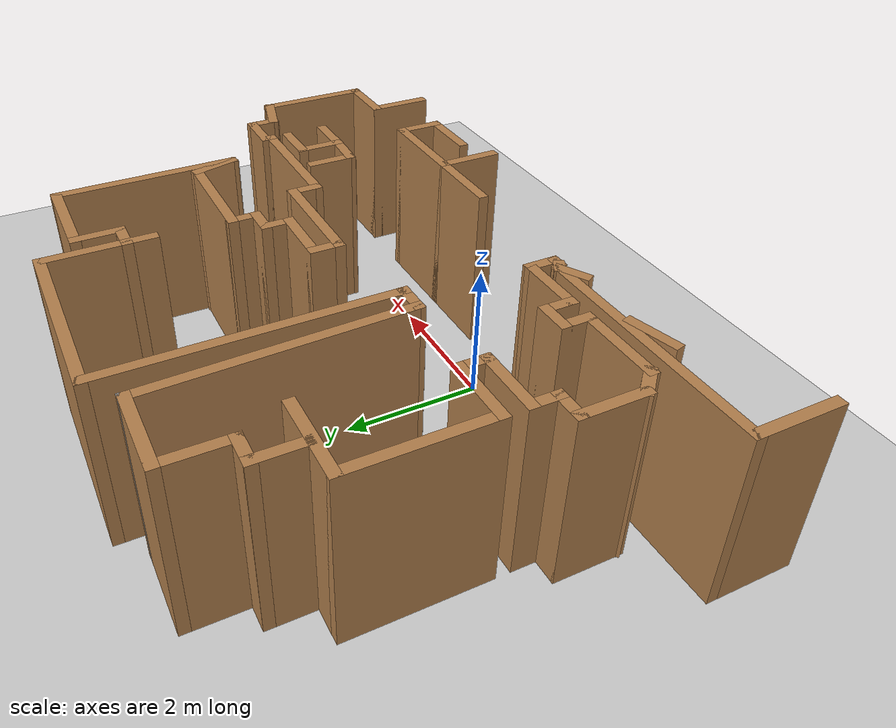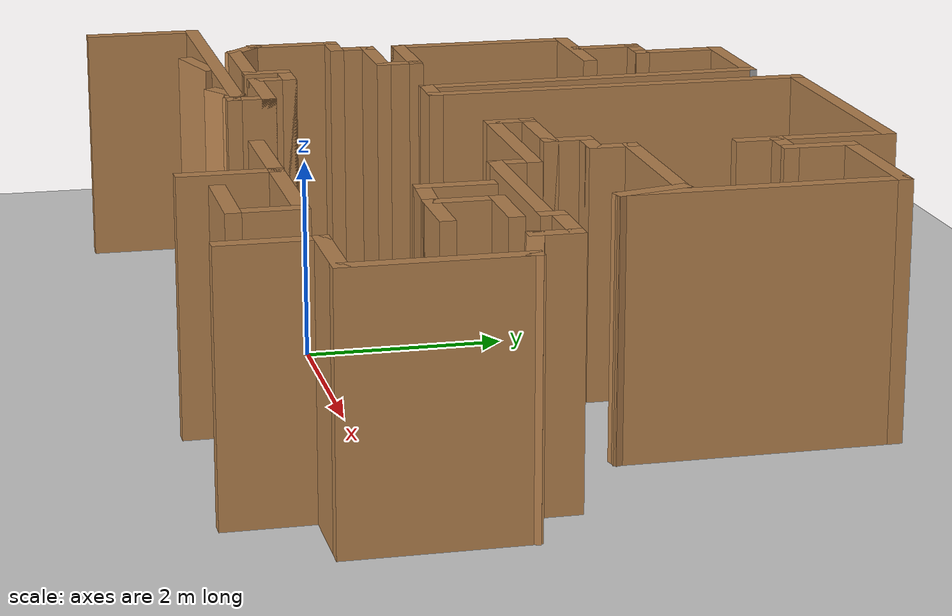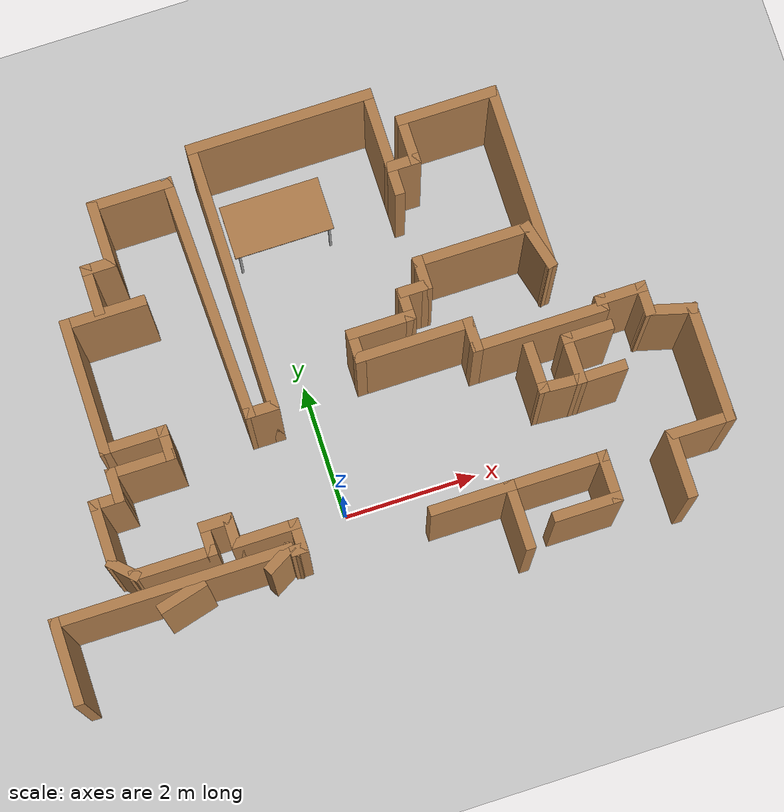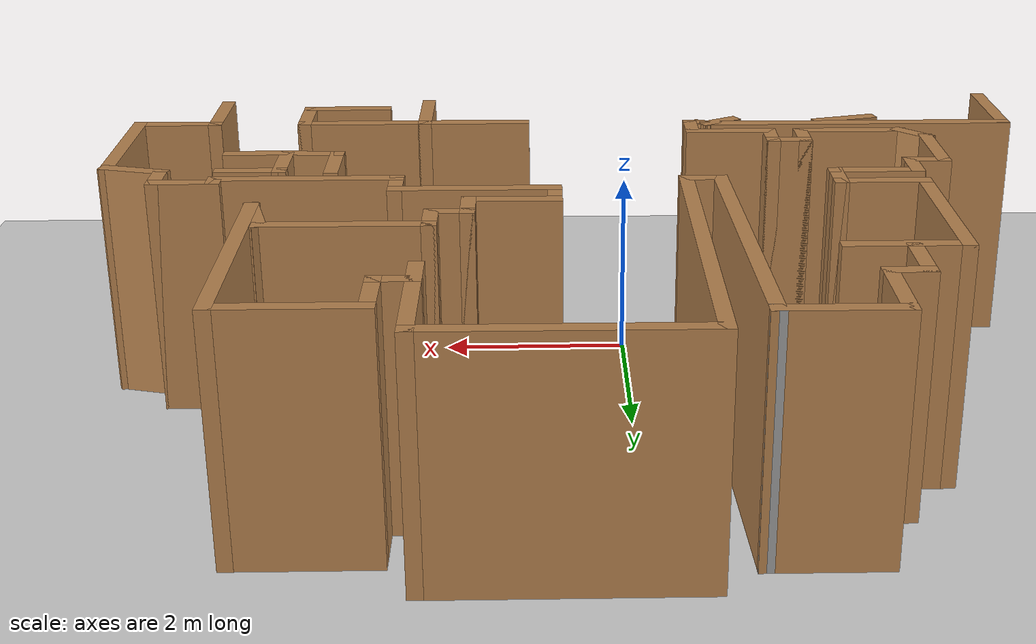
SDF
<sdf version="1.6">
 <world name="default">
  <model name="ground_plane">
   <static>1</static>
   <link name="link">
    <collision name="collision">
     <geometry><plane><normal>0 0 1</normal><size>100 100</size></plane></geometry>
     <surface>
      <contact><collide_bitmask>65535</collide_bitmask></contact>
      <friction><ode><mu>100</mu><mu2>50</mu2></ode></friction>
     </surface>
    </collision>
    <visual name="visual">
     <cast_shadows>0</cast_shadows>
     <geometry><plane><normal>0 0 1</normal><size>100 100</size></plane></geometry>
     <material>
      <script><uri>file://media/materials/scripts/gazebo.material</uri><name>Gazebo/Grey</name></script>
     </material>
    </visual>
   </link>
  </model>
  <model name="map_47">
   <pose>0.712 -1.49736 0 0 -0 0</pose>
   <link name="Wall_0">
    <collision name="Wall_0_Collision">
     <geometry><box><size>1.25 0.15 2.5</size></box></geometry>
     <pose>0 0 1.25 0 -0 0</pose>
    </collision>
    <visual name="Wall_0_Visual">
     <pose>0 0 1.25 0 -0 0</pose>
     <geometry><box><size>1.25 0.15 2.5</size></box></geometry>
     <material>
      <script><uri>file://media/materials/scripts/gazebo.material</uri><name>Gazebo/Wood</name></script>
      <ambient>1 1 1 1</ambient>
     </material>
     <meta><layer>0</layer></meta>
    </visual>
    <pose>-2.27237 6.42125 0 0 -0 3.14159</pose>
   </link>
   <link name="Wall_1">
    <collision name="Wall_1_Collision">
     <geometry><box><size>1 0.15 2.5</size></box></geometry>
     <pose>0 0 1.25 0 -0 0</pose>
    </collision>
    <visual name="Wall_1_Visual">
     <pose>0 0 1.25 0 -0 0</pose>
     <geometry><box><size>1 0.15 2.5</size></box></geometry>
     <material>
      <script><uri>file://media/materials/scripts/gazebo.material</uri><name>Gazebo/Wood</name></script>
      <ambient>1 1 1 1</ambient>
     </material>
     <meta><layer>0</layer></meta>
    </visual>
    <pose>-2.82237 5.99625 0 0 -0 -1.5708</pose>
   </link>
   <link name="Wall_10">
    <collision name="Wall_10_Collision">
     <geometry><box><size>1 0.15 2.5</size></box></geometry>
     <pose>0 0 1.25 0 -0 0</pose>
    </collision>
    <visual name="Wall_10_Visual">
     <pose>0 0 1.25 0 -0 0</pose>
     <geometry><box><size>1 0.15 2.5</size></box></geometry>
     <material>
      <script><uri>file://media/materials/scripts/gazebo.material</uri><name>Gazebo/Wood</name></script>
      <ambient>1 1 1 1</ambient>
     </material>
     <meta><layer>0</layer></meta>
    </visual>
    <pose>-3.24838 3.06273 0 0 -0 0</pose>
   </link>
   <link name="Wall_11">
    <collision name="Wall_11_Collision">
     <geometry><box><size>0.5 0.15 2.5</size></box></geometry>
     <pose>0 0 1.25 0 -0 0</pose>
    </collision>
    <visual name="Wall_11_Visual">
     <pose>0 0 1.25 0 -0 0</pose>
     <geometry><box><size>0.5 0.15 2.5</size></box></geometry>
     <material>
      <script><uri>file://media/materials/scripts/gazebo.material</uri><name>Gazebo/Wood</name></script>
      <ambient>1 1 1 1</ambient>
     </material>
     <meta><layer>0</layer></meta>
    </visual>
    <pose>-2.82339 2.88773 0 0 -0 -1.5708</pose>
   </link>
   <link name="Wall_110">
    <collision name="Wall_110_Collision">
     <geometry><box><size>1.25 0.15 2.5</size></box></geometry>
     <pose>0 0 1.25 0 -0 0</pose>
    </collision>
    <visual name="Wall_110_Visual">
     <pose>0 0 1.25 0 -0 0</pose>
     <geometry><box><size>1.25 0.15 2.5</size></box></geometry>
     <material>
      <script><uri>file://media/materials/scripts/gazebo.material</uri><name>Gazebo/Wood</name></script>
      <ambient>1 1 1 1</ambient>
     </material>
     <meta><layer>0</layer></meta>
    </visual>
    <pose>0.9625 0.862132 0 0 -0 0</pose>
   </link>
   <link name="Wall_111">
    <collision name="Wall_111_Collision">
     <geometry><box><size>1 0.15 2.5</size></box></geometry>
     <pose>0 0 1.25 0 -0 0</pose>
    </collision>
    <visual name="Wall_111_Visual">
     <pose>0 0 1.25 0 -0 0</pose>
     <geometry><box><size>1 0.15 2.5</size></box></geometry>
     <material>
      <script><uri>file://media/materials/scripts/gazebo.material</uri><name>Gazebo/Wood</name></script>
      <ambient>1 1 1 1</ambient>
     </material>
     <meta><layer>0</layer></meta>
    </visual>
    <pose>1.5125 0.437132 0 0 -0 -1.5708</pose>
   </link>
   <link name="Wall_113">
    <collision name="Wall_113_Collision">
     <geometry><box><size>1 0.15 2.5</size></box></geometry>
     <pose>0 0 1.25 0 -0 0</pose>
    </collision>
    <visual name="Wall_113_Visual">
     <pose>0 0 1.25 0 -0 0</pose>
     <geometry><box><size>1 0.15 2.5</size></box></geometry>
     <material>
      <script><uri>file://media/materials/scripts/gazebo.material</uri><name>Gazebo/Wood</name></script>
      <ambient>1 1 1 1</ambient>
     </material>
     <meta><layer>0</layer></meta>
    </visual>
    <pose>3.8625 0.437132 0 0 -0 1.5708</pose>
   </link>
   <link name="Wall_114">
    <collision name="Wall_114_Collision">
     <geometry><box><size>1 0.15 2.5</size></box></geometry>
     <pose>0 0 1.25 0 -0 0</pose>
    </collision>
    <visual name="Wall_114_Visual">
     <pose>0 0 1.25 0 -0 0</pose>
     <geometry><box><size>1 0.15 2.5</size></box></geometry>
     <material>
      <script><uri>file://media/materials/scripts/gazebo.material</uri><name>Gazebo/Wood</name></script>
      <ambient>1 1 1 1</ambient>
     </material>
     <meta><layer>0</layer></meta>
    </visual>
    <pose>4.2875 0.862132 0 0 -0 0</pose>
   </link>
   <link name="Wall_115">
    <collision name="Wall_115_Collision">
     <geometry><box><size>1.75 0.15 2.5</size></box></geometry>
     <pose>0 0 1.25 0 -0 0</pose>
    </collision>
    <visual name="Wall_115_Visual">
     <pose>0 0 1.25 0 -0 0</pose>
     <geometry><box><size>1.75 0.15 2.5</size></box></geometry>
     <material>
      <script><uri>file://media/materials/scripts/gazebo.material</uri><name>Gazebo/Wood</name></script>
      <ambient>1 1 1 1</ambient>
     </material>
     <meta><layer>0</layer></meta>
    </visual>
    <pose>4.7125 1.66213 0 0 -0 1.5708</pose>
   </link>
   <link name="Wall_116">
    <collision name="Wall_116_Collision">
     <geometry><box><size>0.75 0.15 2.5</size></box></geometry>
     <pose>0 0 1.25 0 -0 0</pose>
    </collision>
    <visual name="Wall_116_Visual">
     <pose>0 0 1.25 0 -0 0</pose>
     <geometry><box><size>0.75 0.15 2.5</size></box></geometry>
     <material>
      <script><uri>file://media/materials/scripts/gazebo.material</uri><name>Gazebo/Wood</name></script>
      <ambient>1 1 1 1</ambient>
     </material>
     <meta><layer>0</layer></meta>
    </visual>
    <pose>4.42272 2.53978 0 0 -0 2.87979</pose>
   </link>
   <link name="Wall_117">
    <collision name="Wall_117_Collision">
     <geometry><box><size>0.5 0.15 2.5</size></box></geometry>
     <pose>0 0 1.25 0 -0 0</pose>
    </collision>
    <visual name="Wall_117_Visual">
     <pose>0 0 1.25 0 -0 0</pose>
     <geometry><box><size>0.5 0.15 2.5</size></box></geometry>
     <material>
      <script><uri>file://media/materials/scripts/gazebo.material</uri><name>Gazebo/Wood</name></script>
      <ambient>1 1 1 1</ambient>
     </material>
     <meta><layer>0</layer></meta>
    </visual>
    <pose>4.13295 2.79242 0 0 -0 1.5708</pose>
   </link>
   <link name="Wall_118">
    <collision name="Wall_118_Collision">
     <geometry><box><size>0.75 0.15 2.5</size></box></geometry>
     <pose>0 0 1.25 0 -0 0</pose>
    </collision>
    <visual name="Wall_118_Visual">
     <pose>0 0 1.25 0 -0 0</pose>
     <geometry><box><size>0.75 0.15 2.5</size></box></geometry>
     <material>
      <script><uri>file://media/materials/scripts/gazebo.material</uri><name>Gazebo/Wood</name></script>
      <ambient>1 1 1 1</ambient>
     </material>
     <meta><layer>0</layer></meta>
    </visual>
    <pose>3.83294 2.96742 0 0 -0 3.14159</pose>
   </link>
   <link name="Wall_119">
    <collision name="Wall_119_Collision">
     <geometry><box><size>0.25 0.15 2.5</size></box></geometry>
     <pose>0 0 1.25 0 -0 0</pose>
    </collision>
    <visual name="Wall_119_Visual">
     <pose>0 0 1.25 0 -0 0</pose>
     <geometry><box><size>0.25 0.15 2.5</size></box></geometry>
     <material>
      <script><uri>file://media/materials/scripts/gazebo.material</uri><name>Gazebo/Wood</name></script>
      <ambient>1 1 1 1</ambient>
     </material>
     <meta><layer>0</layer></meta>
    </visual>
    <pose>3.53294 2.91742 0 0 -0 -1.5708</pose>
   </link>
   <link name="Wall_12">
    <collision name="Wall_12_Collision">
     <geometry><box><size>1 0.15 2.5</size></box></geometry>
     <pose>0 0 1.25 0 -0 0</pose>
    </collision>
    <visual name="Wall_12_Visual">
     <pose>0 0 1.25 0 -0 0</pose>
     <geometry><box><size>1 0.15 2.5</size></box></geometry>
     <material>
      <script><uri>file://media/materials/scripts/gazebo.material</uri><name>Gazebo/Wood</name></script>
      <ambient>1 1 1 1</ambient>
     </material>
     <meta><layer>0</layer></meta>
    </visual>
    <pose>-3.24838 2.71273 0 0 -0 3.14159</pose>
   </link>
   <link name="Wall_120">
    <collision name="Wall_120_Collision">
     <geometry><box><size>2 0.15 2.5</size></box></geometry>
     <pose>0 0 1.25 0 -0 0</pose>
    </collision>
    <visual name="Wall_120_Visual">
     <pose>0 0 1.25 0 -0 0</pose>
     <geometry><box><size>2 0.15 2.5</size></box></geometry>
     <material>
      <script><uri>file://media/materials/scripts/gazebo.material</uri><name>Gazebo/Wood</name></script>
      <ambient>1 1 1 1</ambient>
     </material>
     <meta><layer>0</layer></meta>
    </visual>
    <pose>2.60794 2.86742 0 0 -0 3.14159</pose>
   </link>
   <link name="Wall_121">
    <collision name="Wall_121_Collision">
     <geometry><box><size>0.5 0.15 2.5</size></box></geometry>
     <pose>0 0 1.25 0 -0 0</pose>
    </collision>
    <visual name="Wall_121_Visual">
     <pose>0 0 1.25 0 -0 0</pose>
     <geometry><box><size>0.5 0.15 2.5</size></box></geometry>
     <material>
      <script><uri>file://media/materials/scripts/gazebo.material</uri><name>Gazebo/Wood</name></script>
      <ambient>1 1 1 1</ambient>
     </material>
     <meta><layer>0</layer></meta>
    </visual>
    <pose>1.68294 3.04242 0 0 -0 1.5708</pose>
   </link>
   <link name="Wall_122">
    <collision name="Wall_122_Collision">
     <geometry><box><size>1.75 0.15 2.5</size></box></geometry>
     <pose>0 0 1.25 0 -0 0</pose>
    </collision>
    <visual name="Wall_122_Visual">
     <pose>0 0 1.25 0 -0 0</pose>
     <geometry><box><size>1.75 0.15 2.5</size></box></geometry>
     <material>
      <script><uri>file://media/materials/scripts/gazebo.material</uri><name>Gazebo/Wood</name></script>
      <ambient>1 1 1 1</ambient>
     </material>
     <meta><layer>0</layer></meta>
    </visual>
    <pose>0.882944 3.21742 0 0 -0 3.14159</pose>
   </link>
   <link name="Wall_123">
    <collision name="Wall_123_Collision">
     <geometry><box><size>0.5 0.15 2.5</size></box></geometry>
     <pose>0 0 1.25 0 -0 0</pose>
    </collision>
    <visual name="Wall_123_Visual">
     <pose>0 0 1.25 0 -0 0</pose>
     <geometry><box><size>0.5 0.15 2.5</size></box></geometry>
     <material>
      <script><uri>file://media/materials/scripts/gazebo.material</uri><name>Gazebo/Wood</name></script>
      <ambient>1 1 1 1</ambient>
     </material>
     <meta><layer>0</layer></meta>
    </visual>
    <pose>0.082945 3.39242 0 0 -0 1.5708</pose>
   </link>
   <link name="Wall_126">
    <collision name="Wall_126_Collision">
     <geometry><box><size>1 0.15 2.5</size></box></geometry>
     <pose>0 0 1.25 0 -0 0</pose>
    </collision>
    <visual name="Wall_126_Visual">
     <pose>0 0 1.25 0 -0 0</pose>
     <geometry><box><size>1 0.15 2.5</size></box></geometry>
     <material>
      <script><uri>file://media/materials/scripts/gazebo.material</uri><name>Gazebo/Wood</name></script>
      <ambient>1 1 1 1</ambient>
     </material>
     <meta><layer>0</layer></meta>
    </visual>
    <pose>0.507945 3.56742 0 0 -0 0</pose>
   </link>
   <link name="Wall_127">
    <collision name="Wall_127_Collision">
     <geometry><box><size>0.5 0.15 2.5</size></box></geometry>
     <pose>0 0 1.25 0 -0 0</pose>
    </collision>
    <visual name="Wall_127_Visual">
     <pose>0 0 1.25 0 -0 0</pose>
     <geometry><box><size>0.5 0.15 2.5</size></box></geometry>
     <material>
      <script><uri>file://media/materials/scripts/gazebo.material</uri><name>Gazebo/Wood</name></script>
      <ambient>1 1 1 1</ambient>
     </material>
     <meta><layer>0</layer></meta>
    </visual>
    <pose>0.932945 3.74242 0 0 -0 1.5708</pose>
   </link>
   <link name="Wall_128">
    <collision name="Wall_128_Collision">
     <geometry><box><size>0.5 0.15 2.5</size></box></geometry>
     <pose>0 0 1.25 0 -0 0</pose>
    </collision>
    <visual name="Wall_128_Visual">
     <pose>0 0 1.25 0 -0 0</pose>
     <geometry><box><size>0.5 0.15 2.5</size></box></geometry>
     <material>
      <script><uri>file://media/materials/scripts/gazebo.material</uri><name>Gazebo/Wood</name></script>
      <ambient>1 1 1 1</ambient>
     </material>
     <meta><layer>0</layer></meta>
    </visual>
    <pose>1.10794 3.91742 0 0 -0 0</pose>
   </link>
   <link name="Wall_129">
    <collision name="Wall_129_Collision">
     <geometry><box><size>0.5 0.15 2.5</size></box></geometry>
     <pose>0 0 1.25 0 -0 0</pose>
    </collision>
    <visual name="Wall_129_Visual">
     <pose>0 0 1.25 0 -0 0</pose>
     <geometry><box><size>0.5 0.15 2.5</size></box></geometry>
     <material>
      <script><uri>file://media/materials/scripts/gazebo.material</uri><name>Gazebo/Wood</name></script>
      <ambient>1 1 1 1</ambient>
     </material>
     <meta><layer>0</layer></meta>
    </visual>
    <pose>1.28295 4.09242 0 0 -0 1.5708</pose>
   </link>
   <link name="Wall_13">
    <collision name="Wall_13_Collision">
     <geometry><box><size>0.5 0.15 2.5</size></box></geometry>
     <pose>0 0 1.25 0 -0 0</pose>
    </collision>
    <visual name="Wall_13_Visual">
     <pose>0 0 1.25 0 -0 0</pose>
     <geometry><box><size>0.5 0.15 2.5</size></box></geometry>
     <material>
      <script><uri>file://media/materials/scripts/gazebo.material</uri><name>Gazebo/Wood</name></script>
      <ambient>1 1 1 1</ambient>
     </material>
     <meta><layer>0</layer></meta>
    </visual>
    <pose>-3.67339 2.53773 0 0 -0 -1.5708</pose>
   </link>
   <link name="Wall_130">
    <collision name="Wall_130_Collision">
     <geometry><box><size>1.75 0.15 2.5</size></box></geometry>
     <pose>0 0 1.25 0 -0 0</pose>
    </collision>
    <visual name="Wall_130_Visual">
     <pose>0 0 1.25 0 -0 0</pose>
     <geometry><box><size>1.75 0.15 2.5</size></box></geometry>
     <material>
      <script><uri>file://media/materials/scripts/gazebo.material</uri><name>Gazebo/Wood</name></script>
      <ambient>1 1 1 1</ambient>
     </material>
     <meta><layer>0</layer></meta>
    </visual>
    <pose>2.08294 4.26742 0 0 -0 0</pose>
   </link>
   <link name="Wall_131">
    <collision name="Wall_131_Collision">
     <geometry><box><size>0.75 0.15 2.5</size></box></geometry>
     <pose>0 0 1.25 0 -0 0</pose>
    </collision>
    <visual name="Wall_131_Visual">
     <pose>0 0 1.25 0 -0 0</pose>
     <geometry><box><size>0.75 0.15 2.5</size></box></geometry>
     <material>
      <script><uri>file://media/materials/scripts/gazebo.material</uri><name>Gazebo/Wood</name></script>
      <ambient>1 1 1 1</ambient>
     </material>
     <meta><layer>0</layer></meta>
    </visual>
    <pose>2.96059 3.97765 0 0 -0 -1.309</pose>
   </link>
   <link name="Wall_132">
    <collision name="Wall_132_Collision">
     <geometry><box><size>2.75 0.15 2.5</size></box></geometry>
     <pose>0 0 1.25 0 -0 0</pose>
    </collision>
    <visual name="Wall_132_Visual">
     <pose>0 0 1.25 0 -0 0</pose>
     <geometry><box><size>2.75 0.15 2.5</size></box></geometry>
     <material>
      <script><uri>file://media/materials/scripts/gazebo.material</uri><name>Gazebo/Wood</name></script>
      <ambient>1 1 1 1</ambient>
     </material>
     <meta><layer>0</layer></meta>
    </visual>
    <pose>3.03824 4.98787 0 0 -0 1.5708</pose>
   </link>
   <link name="Wall_133">
    <collision name="Wall_133_Collision">
     <geometry><box><size>1.5 0.15 2.5</size></box></geometry>
     <pose>0 0 1.25 0 -0 0</pose>
    </collision>
    <visual name="Wall_133_Visual">
     <pose>0 0 1.25 0 -0 0</pose>
     <geometry><box><size>1.5 0.15 2.5</size></box></geometry>
     <material>
      <script><uri>file://media/materials/scripts/gazebo.material</uri><name>Gazebo/Wood</name></script>
      <ambient>1 1 1 1</ambient>
     </material>
     <meta><layer>0</layer></meta>
    </visual>
    <pose>2.36324 6.28787 0 0 -0 3.14159</pose>
   </link>
   <link name="Wall_134">
    <collision name="Wall_134_Collision">
     <geometry><box><size>0.75 0.15 2.5</size></box></geometry>
     <pose>0 0 1.25 0 -0 0</pose>
    </collision>
    <visual name="Wall_134_Visual">
     <pose>0 0 1.25 0 -0 0</pose>
     <geometry><box><size>0.75 0.15 2.5</size></box></geometry>
     <material>
      <script><uri>file://media/materials/scripts/gazebo.material</uri><name>Gazebo/Wood</name></script>
      <ambient>1 1 1 1</ambient>
     </material>
     <meta><layer>0</layer></meta>
    </visual>
    <pose>1.68824 5.98787 0 0 -0 -1.5708</pose>
   </link>
   <link name="Wall_135">
    <collision name="Wall_135_Collision">
     <geometry><box><size>0.5 0.15 2.5</size></box></geometry>
     <pose>0 0 1.25 0 -0 0</pose>
    </collision>
    <visual name="Wall_135_Visual">
     <pose>0 0 1.25 0 -0 0</pose>
     <geometry><box><size>0.5 0.15 2.5</size></box></geometry>
     <material>
      <script><uri>file://media/materials/scripts/gazebo.material</uri><name>Gazebo/Wood</name></script>
      <ambient>1 1 1 1</ambient>
     </material>
     <meta><layer>0</layer></meta>
    </visual>
    <pose>1.51324 5.68787 0 0 -0 3.14159</pose>
   </link>
   <link name="Wall_136">
    <collision name="Wall_136_Collision">
     <geometry><box><size>1.25 0.15 2.5</size></box></geometry>
     <pose>0 0 1.25 0 -0 0</pose>
    </collision>
    <visual name="Wall_136_Visual">
     <pose>0 0 1.25 0 -0 0</pose>
     <geometry><box><size>1.25 0.15 2.5</size></box></geometry>
     <material>
      <script><uri>file://media/materials/scripts/gazebo.material</uri><name>Gazebo/Wood</name></script>
      <ambient>1 1 1 1</ambient>
     </material>
     <meta><layer>0</layer></meta>
    </visual>
    <pose>1.33824 6.23787 0 0 -0 1.5708</pose>
   </link>
   <link name="Wall_137">
    <collision name="Wall_137_Collision">
     <geometry><box><size>2.75 0.15 2.5</size></box></geometry>
     <pose>0 0 1.25 0 -0 0</pose>
    </collision>
    <visual name="Wall_137_Visual">
     <pose>0 0 1.25 0 -0 0</pose>
     <geometry><box><size>2.75 0.15 2.5</size></box></geometry>
     <material>
      <script><uri>file://media/materials/scripts/gazebo.material</uri><name>Gazebo/Wood</name></script>
      <ambient>1 1 1 1</ambient>
     </material>
     <meta><layer>0</layer></meta>
    </visual>
    <pose>0.038236 6.78787 0 0 -0 3.14159</pose>
   </link>
   <link name="Wall_138">
    <collision name="Wall_138_Collision">
     <geometry><box><size>4 0.15 2.5</size></box></geometry>
     <pose>0 0 1.25 0 -0 0</pose>
    </collision>
    <visual name="Wall_138_Visual">
     <pose>0 0 1.25 0 -0 0</pose>
     <geometry><box><size>4 0.15 2.5</size></box></geometry>
     <material>
      <script><uri>file://media/materials/scripts/gazebo.material</uri><name>Gazebo/Wood</name></script>
      <ambient>1 1 1 1</ambient>
     </material>
     <meta><layer>0</layer></meta>
    </visual>
    <pose>-1.26176 4.86287 0 0 -0 -1.5708</pose>
   </link>
   <link name="Wall_139">
    <collision name="Wall_139_Collision">
     <geometry><box><size>0.5 0.15 2.5</size></box></geometry>
     <pose>0 0 1.25 0 -0 0</pose>
    </collision>
    <visual name="Wall_139_Visual">
     <pose>0 0 1.25 0 -0 0</pose>
     <geometry><box><size>0.5 0.15 2.5</size></box></geometry>
     <material>
      <script><uri>file://media/materials/scripts/gazebo.material</uri><name>Gazebo/Wood</name></script>
      <ambient>1 1 1 1</ambient>
     </material>
     <meta><layer>0</layer></meta>
    </visual>
    <pose>-1.43676 2.93787 0 0 -0 3.14159</pose>
   </link>
   <link name="Wall_141">
    <collision name="Wall_141_Collision">
     <geometry><box><size>0.15 0.15 2.5</size></box></geometry>
     <pose>0 0 1.25 0 -0 0</pose>
    </collision>
    <visual name="Wall_141_Visual">
     <pose>0 0 1.25 0 -0 0</pose>
     <geometry><box><size>0.15 0.15 2.5</size></box></geometry>
     <material>
      <script><uri>file://media/materials/scripts/gazebo.material</uri><name>Gazebo/Grey</name></script>
      <ambient>1 1 1 1</ambient>
     </material>
     <meta><layer>0</layer></meta>
    </visual>
    <pose>-1.72237 6.42125 0 0 -0 0</pose>
   </link>
   <link name="Wall_144">
    <collision name="Wall_144_Collision">
     <geometry><box><size>3.63513 0.15 2.5</size></box></geometry>
     <pose>0 0 1.25 0 -0 0</pose>
    </collision>
    <visual name="Wall_144_Visual">
     <pose>0 0 1.25 0 -0 0</pose>
     <geometry><box><size>3.63513 0.15 2.5</size></box></geometry>
     <material>
      <script><uri>file://media/materials/scripts/gazebo.material</uri><name>Gazebo/Wood</name></script>
      <ambient>1 1 1 1</ambient>
     </material>
     <meta><layer>0</layer></meta>
    </visual>
    <pose>-1.66707 4.67956 0 0 -0 1.60254</pose>
   </link>
   <link name="Wall_146">
    <collision name="Wall_146_Collision">
     <geometry><box><size>0.5 0.15 2.5</size></box></geometry>
     <pose>0 0 1.25 0 -0 0</pose>
    </collision>
    <visual name="Wall_146_Visual">
     <pose>0 0 1.25 0 -0 0</pose>
     <geometry><box><size>0.5 0.15 2.5</size></box></geometry>
     <material>
      <script><uri>file://media/materials/scripts/gazebo.material</uri><name>Gazebo/Wood</name></script>
      <ambient>1 1 1 1</ambient>
     </material>
     <meta><layer>0</layer></meta>
    </visual>
    <pose>1.33824 5.51287 0 0 -0 -1.5708</pose>
   </link>
   <link name="Wall_148">
    <collision name="Wall_148_Collision">
     <geometry><box><size>0.75 0.15 2.5</size></box></geometry>
     <pose>0 0 1.25 0 -0 0</pose>
    </collision>
    <visual name="Wall_148_Visual">
     <pose>0 0 1.25 0 -0 0</pose>
     <geometry><box><size>0.75 0.15 2.5</size></box></geometry>
     <material>
      <script><uri>file://media/materials/scripts/gazebo.material</uri><name>Gazebo/Wood</name></script>
      <ambient>1 1 1 1</ambient>
     </material>
     <meta><layer>0</layer></meta>
    </visual>
    <pose>3.21399 2.5924 0 0 -0 3.14159</pose>
   </link>
   <link name="Wall_149">
    <collision name="Wall_149_Collision">
     <geometry><box><size>0.75 0.15 2.5</size></box></geometry>
     <pose>0 0 1.25 0 -0 0</pose>
    </collision>
    <visual name="Wall_149_Visual">
     <pose>0 0 1.25 0 -0 0</pose>
     <geometry><box><size>0.75 0.15 2.5</size></box></geometry>
     <material>
      <script><uri>file://media/materials/scripts/gazebo.material</uri><name>Gazebo/Wood</name></script>
      <ambient>1 1 1 1</ambient>
     </material>
     <meta><layer>0</layer></meta>
    </visual>
    <pose>2.91399 2.2924 0 0 -0 -1.5708</pose>
   </link>
   <link name="Wall_150">
    <collision name="Wall_150_Collision">
     <geometry><box><size>0.75 0.15 2.5</size></box></geometry>
     <pose>0 0 1.25 0 -0 0</pose>
    </collision>
    <visual name="Wall_150_Visual">
     <pose>0 0 1.25 0 -0 0</pose>
     <geometry><box><size>0.75 0.15 2.5</size></box></geometry>
     <material>
      <script><uri>file://media/materials/scripts/gazebo.material</uri><name>Gazebo/Wood</name></script>
      <ambient>1 1 1 1</ambient>
     </material>
     <meta><layer>0</layer></meta>
    </visual>
    <pose>3.21399 1.9924 0 0 -0 0</pose>
   </link>
   <link name="Wall_152">
    <collision name="Wall_152_Collision">
     <geometry><box><size>0.75 0.15 2.5</size></box></geometry>
     <pose>0 0 1.25 0 -0 0</pose>
    </collision>
    <visual name="Wall_152_Visual">
     <pose>0 0 1.25 0 -0 0</pose>
     <geometry><box><size>0.75 0.15 2.5</size></box></geometry>
     <material>
      <script><uri>file://media/materials/scripts/gazebo.material</uri><name>Gazebo/Wood</name></script>
      <ambient>1 1 1 1</ambient>
     </material>
     <meta><layer>0</layer></meta>
    </visual>
    <pose>2.37714 2.32738 0 0 -0 -1.5708</pose>
   </link>
   <link name="Wall_153">
    <collision name="Wall_153_Collision">
     <geometry><box><size>0.687992 0.15 2.5</size></box></geometry>
     <pose>0 0 1.25 0 -0 0</pose>
    </collision>
    <visual name="Wall_153_Visual">
     <pose>0 0 1.25 0 -0 0</pose>
     <geometry><box><size>0.687992 0.15 2.5</size></box></geometry>
     <material>
      <script><uri>file://media/materials/scripts/gazebo.material</uri><name>Gazebo/Wood</name></script>
      <ambient>1 1 1 1</ambient>
     </material>
     <meta><layer>0</layer></meta>
    </visual>
    <pose>2.64557 2.00989 0 0 -0 -0.065066</pose>
   </link>
   <link name="Wall_156">
    <collision name="Wall_156_Collision">
     <geometry><box><size>1.5 0.15 2.5</size></box></geometry>
     <pose>0 0 1.25 0 -0 0</pose>
    </collision>
    <visual name="Wall_156_Visual">
     <pose>0 0 1.25 0 -0 0</pose>
     <geometry><box><size>1.5 0.15 2.5</size></box></geometry>
     <material>
      <script><uri>file://media/materials/scripts/gazebo.material</uri><name>Gazebo/Wood</name></script>
      <ambient>1 1 1 1</ambient>
     </material>
     <meta><layer>0</layer></meta>
    </visual>
    <pose>2.1875 0.862132 0 0 -0 0</pose>
   </link>
   <link name="Wall_157">
    <collision name="Wall_157_Collision">
     <geometry><box><size>0.75 0.15 2.5</size></box></geometry>
     <pose>0 0 1.25 0 -0 0</pose>
    </collision>
    <visual name="Wall_157_Visual">
     <pose>0 0 1.25 0 -0 0</pose>
     <geometry><box><size>0.75 0.15 2.5</size></box></geometry>
     <material>
      <script><uri>file://media/materials/scripts/gazebo.material</uri><name>Gazebo/Wood</name></script>
      <ambient>1 1 1 1</ambient>
     </material>
     <meta><layer>0</layer></meta>
    </visual>
    <pose>2.8625 0.562132 0 0 -0 -1.5708</pose>
   </link>
   <link name="Wall_158">
    <collision name="Wall_158_Collision">
     <geometry><box><size>1 0.15 2.5</size></box></geometry>
     <pose>0 0 1.25 0 -0 0</pose>
    </collision>
    <visual name="Wall_158_Visual">
     <pose>0 0 1.25 0 -0 0</pose>
     <geometry><box><size>1 0.15 2.5</size></box></geometry>
     <material>
      <script><uri>file://media/materials/scripts/gazebo.material</uri><name>Gazebo/Wood</name></script>
      <ambient>1 1 1 1</ambient>
     </material>
     <meta><layer>0</layer></meta>
    </visual>
    <pose>2.4375 0.262132 0 0 -0 3.14159</pose>
   </link>
   <link name="Wall_16">
    <collision name="Wall_16_Collision">
     <geometry><box><size>0.5 0.15 2.5</size></box></geometry>
     <pose>0 0 1.25 0 -0 0</pose>
    </collision>
    <visual name="Wall_16_Visual">
     <pose>0 0 1.25 0 -0 0</pose>
     <geometry><box><size>0.5 0.15 2.5</size></box></geometry>
     <material>
      <script><uri>file://media/materials/scripts/gazebo.material</uri><name>Gazebo/Wood</name></script>
      <ambient>1 1 1 1</ambient>
     </material>
     <meta><layer>0</layer></meta>
    </visual>
    <pose>-3.84838 2.36273 0 0 -0 3.14159</pose>
   </link>
   <link name="Wall_164">
    <collision name="Wall_164_Collision">
     <geometry><box><size>0.5 0.15 2.5</size></box></geometry>
     <pose>0 0 1.25 0 -0 0</pose>
    </collision>
    <visual name="Wall_164_Visual">
     <pose>0 0 1.25 0 -0 0</pose>
     <geometry><box><size>0.5 0.15 2.5</size></box></geometry>
     <material>
      <script><uri>file://media/materials/scripts/gazebo.material</uri><name>Gazebo/Wood</name></script>
      <ambient>1 1 1 1</ambient>
     </material>
     <meta><layer>0</layer></meta>
    </visual>
    <pose>-1.81405 0.877741 0 0 -0 -2.61799</pose>
   </link>
   <link name="Wall_166">
    <collision name="Wall_166_Collision">
     <geometry><box><size>0.75 0.15 2.5</size></box></geometry>
     <pose>0 0 1.25 0 -0 0</pose>
    </collision>
    <visual name="Wall_166_Visual">
     <pose>0 0 1.25 0 -0 0</pose>
     <geometry><box><size>0.75 0.15 2.5</size></box></geometry>
     <material>
      <script><uri>file://media/materials/scripts/gazebo.material</uri><name>Gazebo/Wood</name></script>
      <ambient>1 1 1 1</ambient>
     </material>
     <meta><layer>0</layer></meta>
    </visual>
    <pose>-3.24472 0.798606 0 0 -0 0.261799</pose>
   </link>
   <link name="Wall_17">
    <collision name="Wall_17_Collision">
     <geometry><box><size>1 0.15 2.5</size></box></geometry>
     <pose>0 0 1.25 0 -0 0</pose>
    </collision>
    <visual name="Wall_17_Visual">
     <pose>0 0 1.25 0 -0 0</pose>
     <geometry><box><size>1 0.15 2.5</size></box></geometry>
     <material>
      <script><uri>file://media/materials/scripts/gazebo.material</uri><name>Gazebo/Wood</name></script>
      <ambient>1 1 1 1</ambient>
     </material>
     <meta><layer>0</layer></meta>
    </visual>
    <pose>-4.02339 1.93773 0 0 -0 -1.5708</pose>
   </link>
   <link name="Wall_18">
    <collision name="Wall_18_Collision">
     <geometry><box><size>0.5 0.15 2.5</size></box></geometry>
     <pose>0 0 1.25 0 -0 0</pose>
    </collision>
    <visual name="Wall_18_Visual">
     <pose>0 0 1.25 0 -0 0</pose>
     <geometry><box><size>0.5 0.15 2.5</size></box></geometry>
     <material>
      <script><uri>file://media/materials/scripts/gazebo.material</uri><name>Gazebo/Wood</name></script>
      <ambient>1 1 1 1</ambient>
     </material>
     <meta><layer>0</layer></meta>
    </visual>
    <pose>-3.89964 1.38898 0 0 -0 -0.785398</pose>
   </link>
   <link name="Wall_19">
    <collision name="Wall_19_Collision">
     <geometry><box><size>1.25 0.15 2.5</size></box></geometry>
     <pose>0 0 1.25 0 -0 0</pose>
    </collision>
    <visual name="Wall_19_Visual">
     <pose>0 0 1.25 0 -0 0</pose>
     <geometry><box><size>1.25 0.15 2.5</size></box></geometry>
     <material>
      <script><uri>file://media/materials/scripts/gazebo.material</uri><name>Gazebo/Wood</name></script>
      <ambient>1 1 1 1</ambient>
     </material>
     <meta><layer>0</layer></meta>
    </visual>
    <pose>-3.2259 1.26524 0 0 -0 0</pose>
   </link>
   <link name="Wall_2">
    <collision name="Wall_2_Collision">
     <geometry><box><size>0.5 0.15 2.5</size></box></geometry>
     <pose>0 0 1.25 0 -0 0</pose>
    </collision>
    <visual name="Wall_2_Visual">
     <pose>0 0 1.25 0 -0 0</pose>
     <geometry><box><size>0.5 0.15 2.5</size></box></geometry>
     <material>
      <script><uri>file://media/materials/scripts/gazebo.material</uri><name>Gazebo/Wood</name></script>
      <ambient>1 1 1 1</ambient>
     </material>
     <meta><layer>0</layer></meta>
    </visual>
    <pose>-2.99737 5.57125 0 0 -0 3.14159</pose>
   </link>
   <link name="Wall_20">
    <collision name="Wall_20_Collision">
     <geometry><box><size>0.5 0.15 2.5</size></box></geometry>
     <pose>0 0 1.25 0 -0 0</pose>
    </collision>
    <visual name="Wall_20_Visual">
     <pose>0 0 1.25 0 -0 0</pose>
     <geometry><box><size>0.5 0.15 2.5</size></box></geometry>
     <material>
      <script><uri>file://media/materials/scripts/gazebo.material</uri><name>Gazebo/Wood</name></script>
      <ambient>1 1 1 1</ambient>
     </material>
     <meta><layer>0</layer></meta>
    </visual>
    <pose>-2.6759 1.44024 0 0 -0 1.5708</pose>
   </link>
   <link name="Wall_21">
    <collision name="Wall_21_Collision">
     <geometry><box><size>0.5 0.15 2.5</size></box></geometry>
     <pose>0 0 1.25 0 -0 0</pose>
    </collision>
    <visual name="Wall_21_Visual">
     <pose>0 0 1.25 0 -0 0</pose>
     <geometry><box><size>0.5 0.15 2.5</size></box></geometry>
     <material>
      <script><uri>file://media/materials/scripts/gazebo.material</uri><name>Gazebo/Wood</name></script>
      <ambient>1 1 1 1</ambient>
     </material>
     <meta><layer>0</layer></meta>
    </visual>
    <pose>-2.5009 1.61524 0 0 -0 0</pose>
   </link>
   <link name="Wall_22">
    <collision name="Wall_22_Collision">
     <geometry><box><size>0.5 0.15 2.5</size></box></geometry>
     <pose>0 0 1.25 0 -0 0</pose>
    </collision>
    <visual name="Wall_22_Visual">
     <pose>0 0 1.25 0 -0 0</pose>
     <geometry><box><size>0.5 0.15 2.5</size></box></geometry>
     <material>
      <script><uri>file://media/materials/scripts/gazebo.material</uri><name>Gazebo/Wood</name></script>
      <ambient>1 1 1 1</ambient>
     </material>
     <meta><layer>0</layer></meta>
    </visual>
    <pose>-2.3259 1.44024 0 0 -0 -1.5708</pose>
   </link>
   <link name="Wall_23">
    <collision name="Wall_23_Collision">
     <geometry><box><size>1 0.15 2.5</size></box></geometry>
     <pose>0 0 1.25 0 -0 0</pose>
    </collision>
    <visual name="Wall_23_Visual">
     <pose>0 0 1.25 0 -0 0</pose>
     <geometry><box><size>1 0.15 2.5</size></box></geometry>
     <material>
      <script><uri>file://media/materials/scripts/gazebo.material</uri><name>Gazebo/Wood</name></script>
      <ambient>1 1 1 1</ambient>
     </material>
     <meta><layer>0</layer></meta>
    </visual>
    <pose>-1.9009 1.26524 0 0 -0 0</pose>
   </link>
   <link name="Wall_24">
    <collision name="Wall_24_Collision">
     <geometry><box><size>0.5 0.15 2.5</size></box></geometry>
     <pose>0 0 1.25 0 -0 0</pose>
    </collision>
    <visual name="Wall_24_Visual">
     <pose>0 0 1.25 0 -0 0</pose>
     <geometry><box><size>0.5 0.15 2.5</size></box></geometry>
     <material>
      <script><uri>file://media/materials/scripts/gazebo.material</uri><name>Gazebo/Wood</name></script>
      <ambient>1 1 1 1</ambient>
     </material>
     <meta><layer>0</layer></meta>
    </visual>
    <pose>-1.4759 1.09024 0 0 -0 -1.5708</pose>
   </link>
   <link name="Wall_25">
    <collision name="Wall_25_Collision">
     <geometry><box><size>0.25 0.15 2.5</size></box></geometry>
     <pose>0 0 1.25 0 -0 0</pose>
    </collision>
    <visual name="Wall_25_Visual">
     <pose>0 0 1.25 0 -0 0</pose>
     <geometry><box><size>0.25 0.15 2.5</size></box></geometry>
     <material>
      <script><uri>file://media/materials/scripts/gazebo.material</uri><name>Gazebo/Wood</name></script>
      <ambient>1 1 1 1</ambient>
     </material>
     <meta><layer>0</layer></meta>
    </visual>
    <pose>-1.5259 0.915241 0 0 -0 3.14159</pose>
   </link>
   <link name="Wall_26">
    <collision name="Wall_26_Collision">
     <geometry><box><size>0.25 0.15 2.5</size></box></geometry>
     <pose>0 0 1.25 0 -0 0</pose>
    </collision>
    <visual name="Wall_26_Visual">
     <pose>0 0 1.25 0 -0 0</pose>
     <geometry><box><size>0.25 0.15 2.5</size></box></geometry>
     <material>
      <script><uri>file://media/materials/scripts/gazebo.material</uri><name>Gazebo/Wood</name></script>
      <ambient>1 1 1 1</ambient>
     </material>
     <meta><layer>0</layer></meta>
    </visual>
    <pose>-1.6192 0.940241 0 0 -0 2.61799</pose>
   </link>
   <link name="Wall_27">
    <collision name="Wall_27_Collision">
     <geometry><box><size>3.5 0.15 2.5</size></box></geometry>
     <pose>0 0 1.25 0 -0 0</pose>
    </collision>
    <visual name="Wall_27_Visual">
     <pose>0 0 1.25 0 -0 0</pose>
     <geometry><box><size>3.5 0.15 2.5</size></box></geometry>
     <material>
      <script><uri>file://media/materials/scripts/gazebo.material</uri><name>Gazebo/Wood</name></script>
      <ambient>1 1 1 1</ambient>
     </material>
     <meta><layer>0</layer></meta>
    </visual>
    <pose>-3.3375 0.965241 0 0 -0 3.14159</pose>
   </link>
   <link name="Wall_28">
    <collision name="Wall_28_Collision">
     <geometry><box><size>1.25 0.15 2.5</size></box></geometry>
     <pose>0 0 1.25 0 -0 0</pose>
    </collision>
    <visual name="Wall_28_Visual">
     <pose>0 0 1.25 0 -0 0</pose>
     <geometry><box><size>1.25 0.15 2.5</size></box></geometry>
     <material>
      <script><uri>file://media/materials/scripts/gazebo.material</uri><name>Gazebo/Wood</name></script>
      <ambient>1 1 1 1</ambient>
     </material>
     <meta><layer>0</layer></meta>
    </visual>
    <pose>-5.0125 0.415241 0 0 -0 -1.5708</pose>
   </link>
   <link name="Wall_5">
    <collision name="Wall_5_Collision">
     <geometry><box><size>0.75 0.15 2.5</size></box></geometry>
     <pose>0 0 1.25 0 -0 0</pose>
    </collision>
    <visual name="Wall_5_Visual">
     <pose>0 0 1.25 0 -0 0</pose>
     <geometry><box><size>0.75 0.15 2.5</size></box></geometry>
     <material>
      <script><uri>file://media/materials/scripts/gazebo.material</uri><name>Gazebo/Wood</name></script>
      <ambient>1 1 1 1</ambient>
     </material>
     <meta><layer>0</layer></meta>
    </visual>
    <pose>-3.17237 5.27125 0 0 -0 -1.5708</pose>
   </link>
   <link name="Wall_7">
    <collision name="Wall_7_Collision">
     <geometry><box><size>1.25 0.15 2.5</size></box></geometry>
     <pose>0 0 1.25 0 -0 0</pose>
    </collision>
    <visual name="Wall_7_Visual">
     <pose>0 0 1.25 0 -0 0</pose>
     <geometry><box><size>1.25 0.15 2.5</size></box></geometry>
     <material>
      <script><uri>file://media/materials/scripts/gazebo.material</uri><name>Gazebo/Wood</name></script>
      <ambient>1 1 1 1</ambient>
     </material>
     <meta><layer>0</layer></meta>
    </visual>
    <pose>-3.12338 4.91273 0 0 -0 0</pose>
   </link>
   <link name="Wall_9">
    <collision name="Wall_9_Collision">
     <geometry><box><size>2 0.15 2.5</size></box></geometry>
     <pose>0 0 1.25 0 -0 0</pose>
    </collision>
    <visual name="Wall_9_Visual">
     <pose>0 0 1.25 0 -0 0</pose>
     <geometry><box><size>2 0.15 2.5</size></box></geometry>
     <material>
      <script><uri>file://media/materials/scripts/gazebo.material</uri><name>Gazebo/Wood</name></script>
      <ambient>1 1 1 1</ambient>
     </material>
     <meta><layer>0</layer></meta>
    </visual>
    <pose>-3.67339 3.98773 0 0 -0 -1.5708</pose>
   </link>
   <static>1</static>
  </model>
  <model name="table">
   <static>1</static>
   <link name="link">
    <collision name="surface">
     <pose>0 0 1 0 -0 0</pose>
     <geometry><box><size>1.5 0.8 0.03</size></box></geometry>
     <surface><friction><ode><mu>0.6</mu><mu2>0.6</mu2></ode></friction></surface>
    </collision>
    <visual name="visual1">
     <pose>0 0 1 0 -0 0</pose>
     <geometry><box><size>1.5 0.8 0.03</size></box></geometry>
     <material>
      <script><uri>file://media/materials/scripts/gazebo.material</uri><name>Gazebo/Wood</name></script>
     </material>
    </visual>
    <collision name="front_left_leg">
     <pose>0.68 0.38 0.5 0 -0 0</pose>
     <geometry><cylinder><radius>0.02</radius><length>1</length></cylinder></geometry>
    </collision>
    <visual name="front_left_leg">
     <pose>0.68 0.38 0.5 0 -0 0</pose>
     <geometry><cylinder><radius>0.02</radius><length>1</length></cylinder></geometry>
     <material>
      <script><uri>file://media/materials/scripts/gazebo.material</uri><name>Gazebo/Grey</name></script>
     </material>
    </visual>
    <collision name="front_right_leg">
     <pose>0.68 -0.38 0.5 0 -0 0</pose>
     <geometry><cylinder><radius>0.02</radius><length>1</length></cylinder></geometry>
    </collision>
    <visual name="front_right_leg">
     <pose>0.68 -0.38 0.5 0 -0 0</pose>
     <geometry><cylinder><radius>0.02</radius><length>1</length></cylinder></geometry>
     <material>
      <script><uri>file://media/materials/scripts/gazebo.material</uri><name>Gazebo/Grey</name></script>
     </material>
    </visual>
    <collision name="back_right_leg">
     <pose>-0.68 -0.38 0.5 0 -0 0</pose>
     <geometry><cylinder><radius>0.02</radius><length>1</length></cylinder></geometry>
    </collision>
    <visual name="back_right_leg">
     <pose>-0.68 -0.38 0.5 0 -0 0</pose>
     <geometry><cylinder><radius>0.02</radius><length>1</length></cylinder></geometry>
     <material>
      <script><uri>file://media/materials/scripts/gazebo.material</uri><name>Gazebo/Grey</name></script>
     </material>
    </visual>
    <collision name="back_left_leg">
     <pose>-0.68 0.38 0.5 0 -0 0</pose>
     <geometry><cylinder><radius>0.02</radius><length>1</length></cylinder></geometry>
    </collision>
    <visual name="back_left_leg">
     <pose>-0.68 0.38 0.5 0 -0 0</pose>
     <geometry><cylinder><radius>0.02</radius><length>1</length></cylinder></geometry>
     <material>
      <script><uri>file://media/materials/scripts/gazebo.material</uri><name>Gazebo/Grey</name></script>
     </material>
    </visual>
   </link>
   <pose>0.35335 4.34047 0 0 -0 0</pose>
  </model>
 </world>
</sdf>
